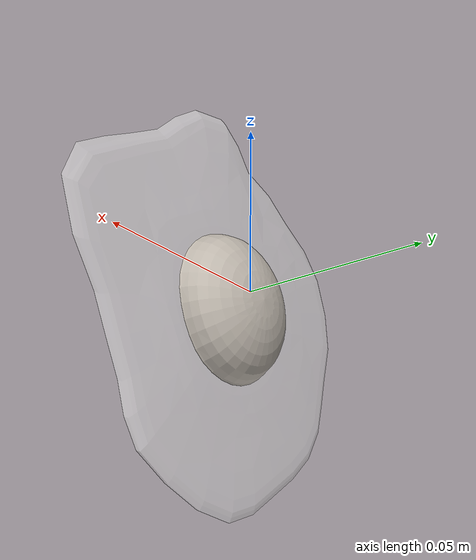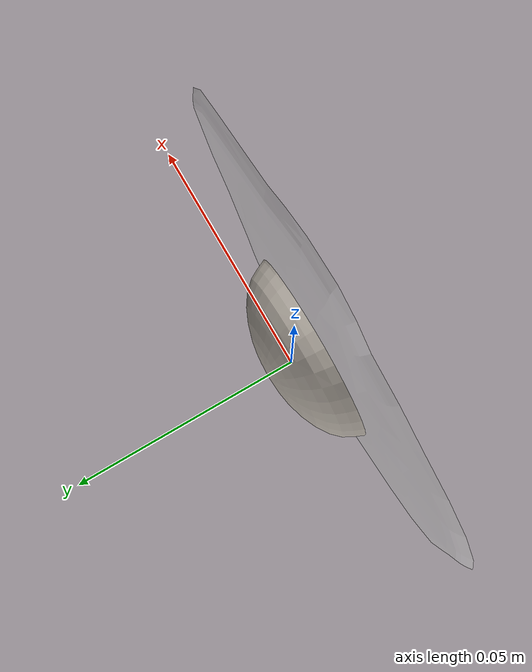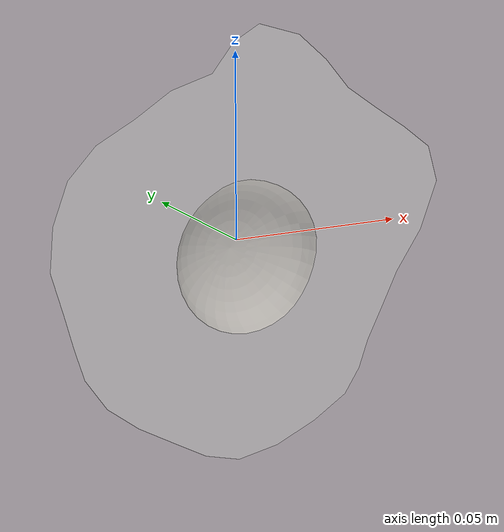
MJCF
<mujoco model="Egg_Cracked_9">
  <compiler autolimits="true" boundmass="0.01" angle="radian"/>
  <default>
    <default class="/">
      <default class="__VISUAL_MJT__">
        <geom contype="0" conaffinity="0" group="0"/>
      </default>
      <default class="__STRUCTURAL_MJT__">
        <geom contype="8" conaffinity="15" group="4" friction="0.90000000000000002 0.90000000000000002 0.001" solref="0.025000000000000001 1" solimp="0.998 0.998 0.001"/>
      </default>
      <default class="__DYNAMIC_MJT__">
        <geom contype="1" conaffinity="15" group="4" friction="0.90000000000000002 0.90000000000000002 0.001" solref="0.025000000000000001 1" solimp="0.998 0.998 0.001"/>
      </default>
    </default>
  </default>
  <asset>
    <texture name="Fried_Egg_White_Uncooked_Mat" type="2d" file="Fried_Egg_AlbedoTransparency.png"/>
    <material name="material_Fried_Egg_White_Uncooked_Mat" class="/" texture="Fried_Egg_White_Uncooked_Mat" specular="0.5" shininess="0.5" rgba="1 1 1 0.5"/>
    <texture name="Fried_Egg_Yolk_Mat" type="2d" file="Fried_Egg_AlbedoTransparency.png"/>
    <material name="material_Fried_Egg_Yolk_Mat" class="/" texture="Fried_Egg_Yolk_Mat" specular="0.5" shininess="0.5" rgba="1 1 1 1"/>
    <mesh name="Egg_Cracked_9_fried_egg_9_0" class="/" file="Egg_Cracked_9_fried_egg_9/Egg_Cracked_9_fried_egg_9_0.obj" scale="1 1 1"/>
    <mesh name="Egg_Cracked_9_fried_egg_9_1" class="/" file="Egg_Cracked_9_fried_egg_9/Egg_Cracked_9_fried_egg_9_1.obj" scale="1 1 1"/>
  </asset>
  <worldbody>
    <body name="Egg_Cracked_9">
      <joint name="Egg_Cracked_9_free" class="/" type="free" pos="0 0 0" axis="0 0 1" stiffness="0" range="0 0" armature="0" damping="0.10000000000000001" frictionloss="0"/>
      <body name="Egg_Cracked_9_fried_egg_9" pos="0.00072999999999999996 -0.01023 -0.0036900000000000001" quat="1 0 0 0">
        <geom name="Egg_Cracked_9_fried_egg_9_0" class="__VISUAL_MJT__" type="mesh" material="material_Fried_Egg_White_Uncooked_Mat" shellinertia="false" mesh="Egg_Cracked_9_fried_egg_9_0"/>
        <geom name="Egg_Cracked_9_fried_egg_9_1" class="__VISUAL_MJT__" type="mesh" material="material_Fried_Egg_Yolk_Mat" shellinertia="false" mesh="Egg_Cracked_9_fried_egg_9_1"/>
        <geom name="Egg_Cracked_9_PrimitiveCollider_0" class="__DYNAMIC_MJT__" type="box" size="0.056070107966661453 0.010231256484985352 0.060068130493164062" rgba="0 1 0 1" pos="0.00072791054844856262 0.010231256484985352 0.0036938190460205078" quat="1 0 0 0"/>
      </body>
    </body>
  </worldbody>
</mujoco>
